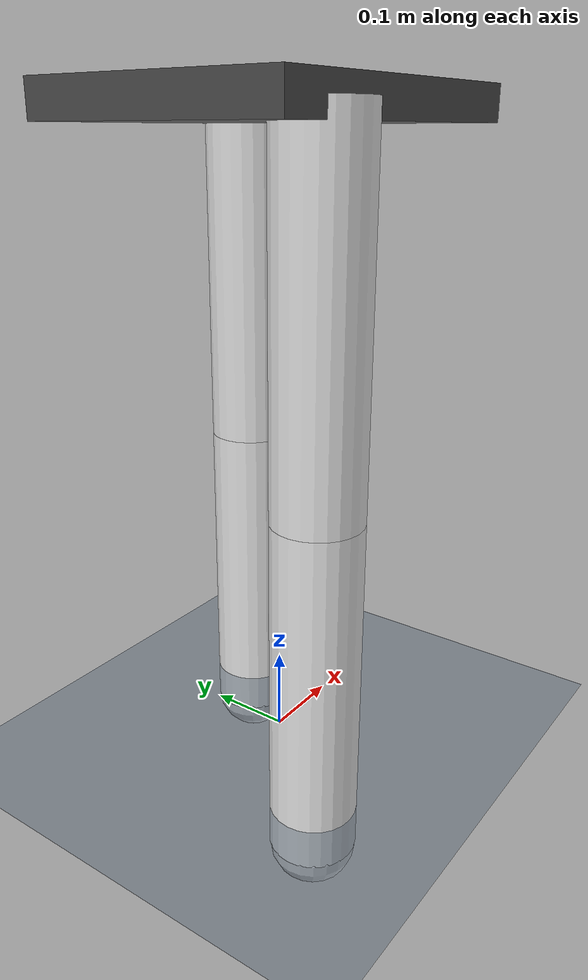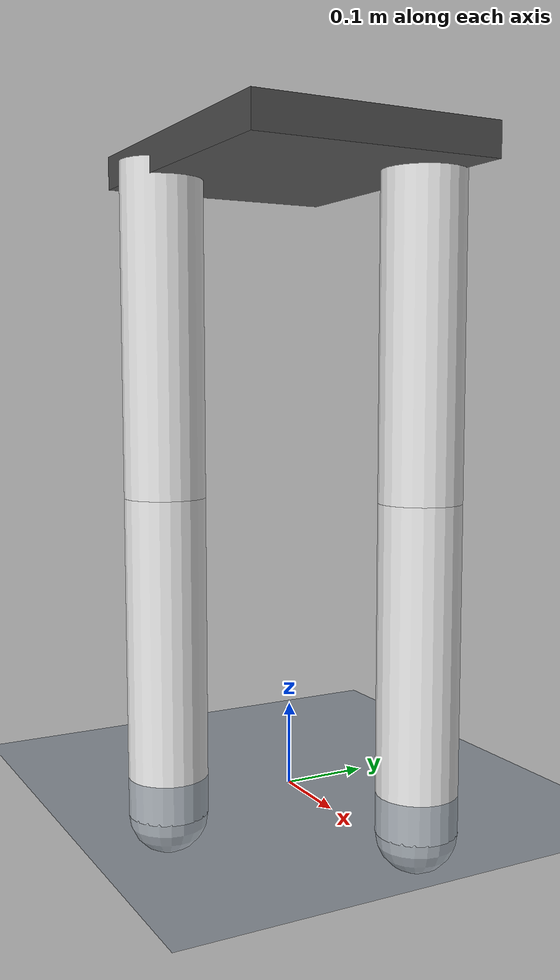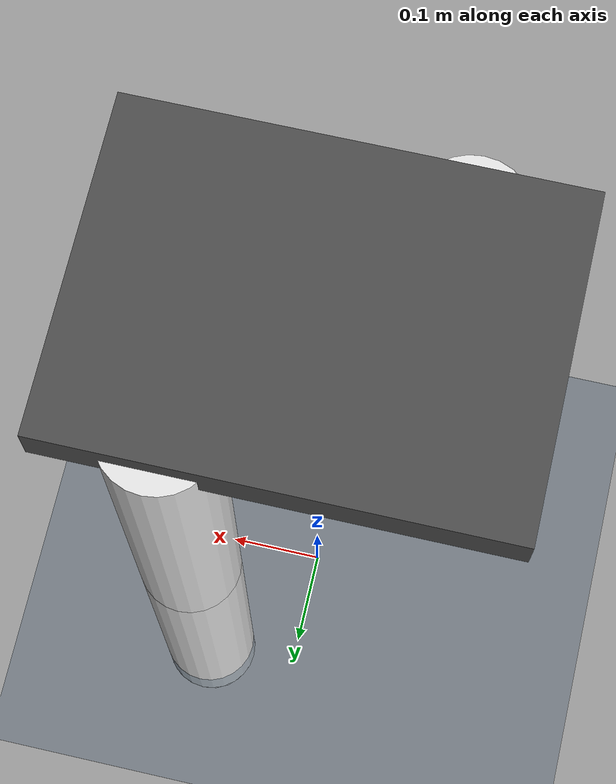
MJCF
<?xml version="1.0" ?>
<!-- MuJoCo XML Model File - Bipedal Robot Simulation -->
<!-- The root element 'mujoco' defines the entire model -->
<mujoco model="simple_biped">
    <!-- Global physics options -->
    <option gravity="0 0 -9.81" timestep="0.002" integrator="RK4">
        <!-- Enable contact forces and energy computation -->
        <flag contact="enable" energy="enable"/>
    </option>

    <!-- Default properties that apply to all elements unless overridden -->
    <default>
        <!-- Moderate joint properties -->
        <joint type="hinge" damping="10" armature="1" limited="true"/>
        <!-- Contact properties -->
        <geom contype="1" conaffinity="1" condim="3" friction="1.5 0.5 0.5" solimp="0.9 0.95 0.001" solref="0.02 1"/>
        <!-- Default inflatable properties -->
        <default class="inflatable">
            <geom type="cylinder" rgba="0.9 0.9 0.9 0.9" friction="1.5 0.1 0.1"
                  solimp="0.95 0.99 0.001" solref="0.01 1"/>
        </default>
    </default>

    <!-- Visual assets for rendering -->
    <asset>
        <!-- Sky background gradient -->
        <texture type="skybox" builtin="gradient" rgb1="0.3 0.5 0.7" rgb2="0 0 0" width="512" height="512"/>
        <!-- Checkered ground texture -->
        <texture name="plane" type="2d" builtin="checker" rgb1="0.2 0.3 0.4" rgb2="0.1 0.2 0.3" width="512" height="512"/>
        <!-- Material using the plane texture -->
        <material name="plane" texture="plane" texrepeat="1 1" texuniform="true"/>
    </asset>

    <!-- All physical bodies in the simulation -->
    <worldbody>
        <!-- Ground plane -->
        <geom name="ground" type="plane" size="10 10 0.1" material="plane" friction="1.5 0.5 0.5"/>
        <!-- Light source for visualization -->
        <light pos="0 0 3" dir="0 0 -1" diffuse="0.5 0.5 0.5"/>

        <!-- Main robot body (torso) -->
        <body name="torso" pos="0 0 0.75">
            <!-- Root joints - only allow x/y motion and rotation -->
            <joint name="root_x" type="slide" axis="1 0 0" pos="0 0 0" range="-10 10"/>
            <joint name="root_y" type="slide" axis="0 1 0" pos="0 0 0" range="-1 1"/>
            <joint name="root_rx" type="hinge" axis="1 0 0" pos="0 0 0" range="-10 10" damping="20"/>
            <joint name="root_ry" type="hinge" axis="0 1 0" pos="0 0 0" range="-10 10" damping="20"/>
            <joint name="root_rz" type="hinge" axis="0 0 1" pos="0 0 0" range="-10 10" damping="20"/>

            <!-- Electronics platform -->
            <geom name="torso" type="box" size="0.2 0.15 0.02" rgba="0.3 0.3 0.3 1" mass="1.5"/>

            <!-- Left leg assembly - positioned more underneath -->
            <body name="left_thigh" pos="0.1 0.12 0">
                <!-- Hip joint - increased range -->
                <joint name="left_hip" axis="0 1 0" range="-20 120" damping="10"/>
                <!-- Thigh segment -->
                <geom name="left_thigh" class="inflatable" size="0.05 0.2" pos="0 0 -0.2" mass="0.4"/>

                <body name="left_shin" pos="0 0 -0.4">
                    <!-- Knee joint - increased range -->
                    <joint name="left_knee" axis="0 1 0" range="-120 0" damping="10"/>
                    <!-- Shin segment -->
                    <geom name="left_shin" class="inflatable" size="0.05 0.2" pos="0 0 -0.2" mass="0.4"/>

                    <!-- Foot -->
                    <body name="left_foot" pos="0 0 -0.4">
                        <!-- Hemisphere foot -->
                        <geom name="left_foot" type="sphere" size="0.05" rgba="0.9 0.9 0.9 0.9" mass="0.2"
                              friction="2.0 0.1 0.1" solimp="0.95 0.99 0.001" solref="0.01 1"/>
                    </body>
                </body>
            </body>

            <!-- Right leg assembly - positioned more underneath -->
            <body name="right_thigh" pos="-0.1 -0.12 0">
                <!-- Hip joint - increased range -->
                <joint name="right_hip" axis="0 1 0" range="-20 120" damping="10"/>
                <!-- Thigh segment -->
                <geom name="right_thigh" class="inflatable" size="0.05 0.2" pos="0 0 -0.2" mass="0.4"/>

                <body name="right_shin" pos="0 0 -0.4">
                    <!-- Knee joint - increased range -->
                    <joint name="right_knee" axis="0 1 0" range="-120 0" damping="10"/>
                    <!-- Shin segment -->
                    <geom name="right_shin" class="inflatable" size="0.05 0.2" pos="0 0 -0.2" mass="0.4"/>

                    <!-- Foot -->
                    <body name="right_foot" pos="0 0 -0.4">
                        <!-- Hemisphere foot -->
                        <geom name="right_foot" type="sphere" size="0.05" rgba="0.9 0.9 0.9 0.9" mass="0.2"
                              friction="2.0 0.1 0.1" solimp="0.95 0.99 0.001" solref="0.01 1"/>
                    </body>
                </body>
            </body>
        </body>
    </worldbody>

    <!-- Position servos with higher gains -->
    <actuator>
        <position name="left_hip_pos" joint="left_hip" kp="200" kv="50"/>
        <position name="left_knee_pos" joint="left_knee" kp="200" kv="50"/>
        <position name="right_hip_pos" joint="right_hip" kp="200" kv="50"/>
        <position name="right_knee_pos" joint="right_knee" kp="200" kv="50"/>
    </actuator>
</mujoco>
